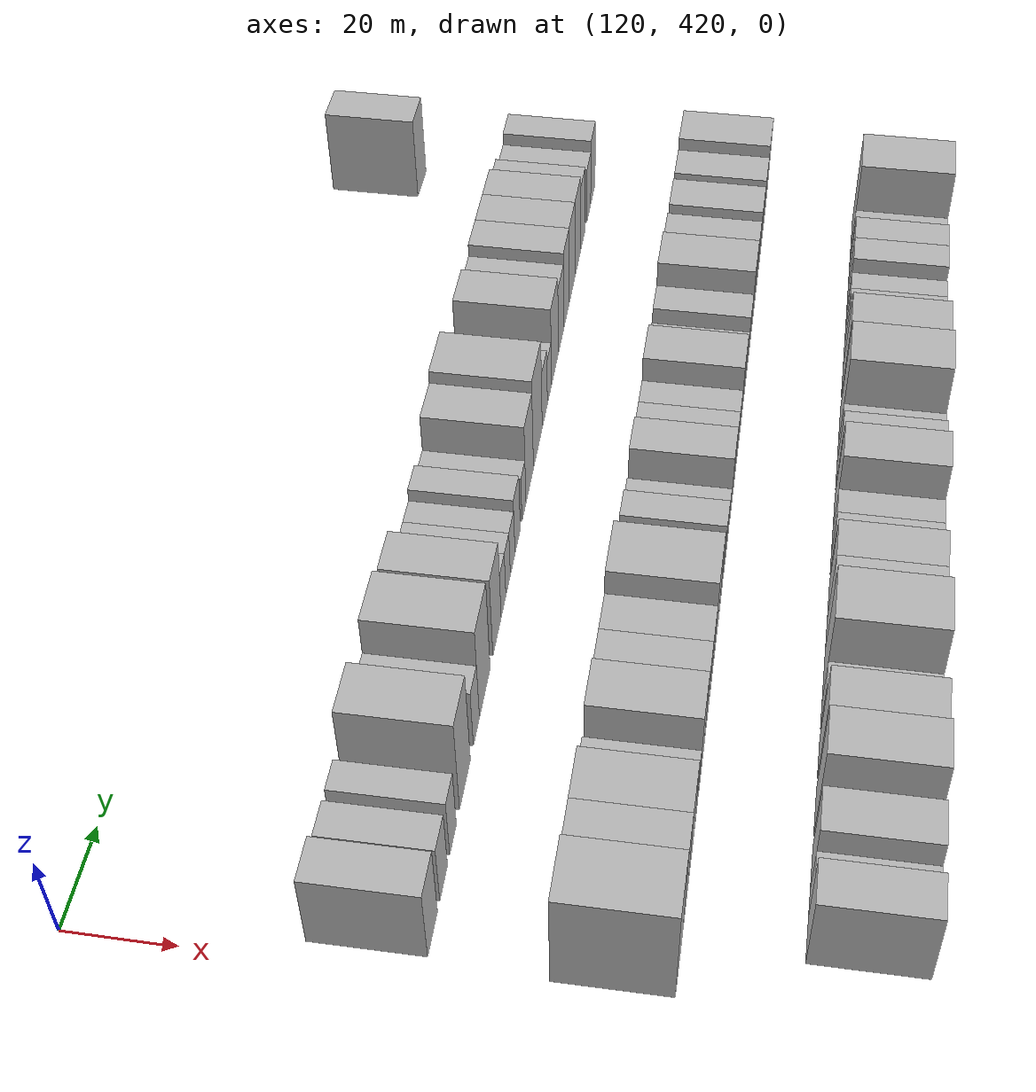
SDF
<sdf version="1.6">
 <world name="default">
  <model name="building_418">
   <static>1</static>
   <pose>130.0000 620.2635 0 0.000000 0.000000 0.000000</pose>
   <link name="link">
    <pose>0 0 10.50 0 0 0</pose>
    <collision name="collision"><geometry><box><size>20.0000 9.5100 21.0000</size></box></geometry></collision>
    <visual name="visual">
     <cast_shadows>0</cast_shadows>
     <geometry><box><size>20.0000 9.5100 21.0000</size></box></geometry>
     <material>
      <script>
       <uri>model://HANNAS_wall/materials/scripts</uri>
       <uri>model://HANNAS_wall/materials/textures</uri>
       <name>vrc/HANNAS_wall</name>
      </script>
     </material>
    </visual>
   </link>
  </model>
  <model name="building_538">
   <static>1</static>
   <pose>170.0000 427.9245 0 0.000000 0.000000 0.000000</pose>
   <link name="link">
    <pose>0 0 9.00 0 0 0</pose>
    <collision name="collision"><geometry><box><size>20.0000 8.2795 18.0000</size></box></geometry></collision>
    <visual name="visual">
     <cast_shadows>0</cast_shadows>
     <geometry><box><size>20.0000 8.2795 18.0000</size></box></geometry>
     <material>
      <script>
       <uri>model://HANNAS_wall/materials/scripts</uri>
       <uri>model://HANNAS_wall/materials/textures</uri>
       <name>vrc/HANNAS_wall</name>
      </script>
     </material>
    </visual>
   </link>
  </model>
  <model name="building_539">
   <static>1</static>
   <pose>170.0000 437.4604 0 0.000000 0.000000 0.000000</pose>
   <link name="link">
    <pose>0 0 7.50 0 0 0</pose>
    <collision name="collision"><geometry><box><size>20.0000 6.7921 15.0000</size></box></geometry></collision>
    <visual name="visual">
     <cast_shadows>0</cast_shadows>
     <geometry><box><size>20.0000 6.7921 15.0000</size></box></geometry>
     <material>
      <script>
       <uri>model://HANNAS_wall/materials/scripts</uri>
       <uri>model://HANNAS_wall/materials/textures</uri>
       <name>vrc/HANNAS_wall</name>
      </script>
     </material>
    </visual>
   </link>
  </model>
  <model name="building_540">
   <static>1</static>
   <pose>170.0000 445.8690 0 0.000000 0.000000 0.000000</pose>
   <link name="link">
    <pose>0 0 7.50 0 0 0</pose>
    <collision name="collision"><geometry><box><size>20.0000 6.0252 15.0000</size></box></geometry></collision>
    <visual name="visual">
     <cast_shadows>0</cast_shadows>
     <geometry><box><size>20.0000 6.0252 15.0000</size></box></geometry>
     <material>
      <script>
       <uri>model://HANNAS_wall/materials/scripts</uri>
       <uri>model://HANNAS_wall/materials/textures</uri>
       <name>vrc/HANNAS_wall</name>
      </script>
     </material>
    </visual>
   </link>
  </model>
  <model name="building_541">
   <static>1</static>
   <pose>170.0000 457.0454 0 0.000000 0.000000 0.000000</pose>
   <link name="link">
    <pose>0 0 12.00 0 0 0</pose>
    <collision name="collision"><geometry><box><size>20.0000 10.3277 24.0000</size></box></geometry></collision>
    <visual name="visual">
     <cast_shadows>0</cast_shadows>
     <geometry><box><size>20.0000 10.3277 24.0000</size></box></geometry>
     <material>
      <script>
       <uri>model://HANNAS_wall/materials/scripts</uri>
       <uri>model://HANNAS_wall/materials/textures</uri>
       <name>vrc/HANNAS_wall</name>
      </script>
     </material>
    </visual>
   </link>
  </model>
  <model name="building_542">
   <static>1</static>
   <pose>170.0000 468.2544 0 0.000000 0.000000 0.000000</pose>
   <link name="link">
    <pose>0 0 7.50 0 0 0</pose>
    <collision name="collision"><geometry><box><size>20.0000 6.0903 15.0000</size></box></geometry></collision>
    <visual name="visual">
     <cast_shadows>0</cast_shadows>
     <geometry><box><size>20.0000 6.0903 15.0000</size></box></geometry>
     <material>
      <script>
       <uri>model://HANNAS_wall/materials/scripts</uri>
       <uri>model://HANNAS_wall/materials/textures</uri>
       <name>vrc/HANNAS_wall</name>
      </script>
     </material>
    </visual>
   </link>
  </model>
  <model name="building_543">
   <static>1</static>
   <pose>170.0000 476.8328 0 0.000000 0.000000 0.000000</pose>
   <link name="link">
    <pose>0 0 12.00 0 0 0</pose>
    <collision name="collision"><geometry><box><size>20.0000 11.0664 24.0000</size></box></geometry></collision>
    <visual name="visual">
     <cast_shadows>0</cast_shadows>
     <geometry><box><size>20.0000 11.0664 24.0000</size></box></geometry>
     <material>
      <script>
       <uri>model://HANNAS_wall/materials/scripts</uri>
       <uri>model://HANNAS_wall/materials/textures</uri>
       <name>vrc/HANNAS_wall</name>
      </script>
     </material>
    </visual>
   </link>
  </model>
  <model name="building_544">
   <static>1</static>
   <pose>170.0000 489.8753 0 0.000000 0.000000 0.000000</pose>
   <link name="link">
    <pose>0 0 10.50 0 0 0</pose>
    <collision name="collision"><geometry><box><size>20.0000 9.0187 21.0000</size></box></geometry></collision>
    <visual name="visual">
     <cast_shadows>0</cast_shadows>
     <geometry><box><size>20.0000 9.0187 21.0000</size></box></geometry>
     <material>
      <script>
       <uri>model://HANNAS_wall/materials/scripts</uri>
       <uri>model://HANNAS_wall/materials/textures</uri>
       <name>vrc/HANNAS_wall</name>
      </script>
     </material>
    </visual>
   </link>
  </model>
  <model name="building_545">
   <static>1</static>
   <pose>170.0000 497.0329 0 0.000000 0.000000 0.000000</pose>
   <link name="link">
    <pose>0 0 6.00 0 0 0</pose>
    <collision name="collision"><geometry><box><size>20.0000 5.2964 12.0000</size></box></geometry></collision>
    <visual name="visual">
     <cast_shadows>0</cast_shadows>
     <geometry><box><size>20.0000 5.2964 12.0000</size></box></geometry>
     <material>
      <script>
       <uri>model://HANNAS_wall/materials/scripts</uri>
       <uri>model://HANNAS_wall/materials/textures</uri>
       <name>vrc/HANNAS_wall</name>
      </script>
     </material>
    </visual>
   </link>
  </model>
  <model name="building_546">
   <static>1</static>
   <pose>170.0000 502.2629 0 0.000000 0.000000 0.000000</pose>
   <link name="link">
    <pose>0 0 6.00 0 0 0</pose>
    <collision name="collision"><geometry><box><size>20.0000 5.1636 12.0000</size></box></geometry></collision>
    <visual name="visual">
     <cast_shadows>0</cast_shadows>
     <geometry><box><size>20.0000 5.1636 12.0000</size></box></geometry>
     <material>
      <script>
       <uri>model://HANNAS_wall/materials/scripts</uri>
       <uri>model://HANNAS_wall/materials/textures</uri>
       <name>vrc/HANNAS_wall</name>
      </script>
     </material>
    </visual>
   </link>
  </model>
  <model name="building_547">
   <static>1</static>
   <pose>170.0000 507.5565 0 0.000000 0.000000 0.000000</pose>
   <link name="link">
    <pose>0 0 6.00 0 0 0</pose>
    <collision name="collision"><geometry><box><size>20.0000 5.4237 12.0000</size></box></geometry></collision>
    <visual name="visual">
     <cast_shadows>0</cast_shadows>
     <geometry><box><size>20.0000 5.4237 12.0000</size></box></geometry>
     <material>
      <script>
       <uri>model://HANNAS_wall/materials/scripts</uri>
       <uri>model://HANNAS_wall/materials/textures</uri>
       <name>vrc/HANNAS_wall</name>
      </script>
     </material>
    </visual>
   </link>
  </model>
  <model name="building_548">
   <static>1</static>
   <pose>170.0000 513.4829 0 0.000000 0.000000 0.000000</pose>
   <link name="link">
    <pose>0 0 7.50 0 0 0</pose>
    <collision name="collision"><geometry><box><size>20.0000 6.4291 15.0000</size></box></geometry></collision>
    <visual name="visual">
     <cast_shadows>0</cast_shadows>
     <geometry><box><size>20.0000 6.4291 15.0000</size></box></geometry>
     <material>
      <script>
       <uri>model://HANNAS_wall/materials/scripts</uri>
       <uri>model://HANNAS_wall/materials/textures</uri>
       <name>vrc/HANNAS_wall</name>
      </script>
     </material>
    </visual>
   </link>
  </model>
  <model name="building_549">
   <static>1</static>
   <pose>170.0000 521.1600 0 0.000000 0.000000 0.000000</pose>
   <link name="link">
    <pose>0 0 6.00 0 0 0</pose>
    <collision name="collision"><geometry><box><size>20.0000 4.9250 12.0000</size></box></geometry></collision>
    <visual name="visual">
     <cast_shadows>0</cast_shadows>
     <geometry><box><size>20.0000 4.9250 12.0000</size></box></geometry>
     <material>
      <script>
       <uri>model://HANNAS_wall/materials/scripts</uri>
       <uri>model://HANNAS_wall/materials/textures</uri>
       <name>vrc/HANNAS_wall</name>
      </script>
     </material>
    </visual>
   </link>
  </model>
  <model name="building_550">
   <static>1</static>
   <pose>170.0000 528.3620 0 0.000000 0.000000 0.000000</pose>
   <link name="link">
    <pose>0 0 10.50 0 0 0</pose>
    <collision name="collision"><geometry><box><size>20.0000 9.4790 21.0000</size></box></geometry></collision>
    <visual name="visual">
     <cast_shadows>0</cast_shadows>
     <geometry><box><size>20.0000 9.4790 21.0000</size></box></geometry>
     <material>
      <script>
       <uri>model://HANNAS_wall/materials/scripts</uri>
       <uri>model://HANNAS_wall/materials/textures</uri>
       <name>vrc/HANNAS_wall</name>
      </script>
     </material>
    </visual>
   </link>
  </model>
  <model name="building_551">
   <static>1</static>
   <pose>170.0000 538.8412 0 0.000000 0.000000 0.000000</pose>
   <link name="link">
    <pose>0 0 12.00 0 0 0</pose>
    <collision name="collision"><geometry><box><size>20.0000 11.4795 24.0000</size></box></geometry></collision>
    <visual name="visual">
     <cast_shadows>0</cast_shadows>
     <geometry><box><size>20.0000 11.4795 24.0000</size></box></geometry>
     <material>
      <script>
       <uri>model://HANNAS_wall/materials/scripts</uri>
       <uri>model://HANNAS_wall/materials/textures</uri>
       <name>vrc/HANNAS_wall</name>
      </script>
     </material>
    </visual>
   </link>
  </model>
  <model name="building_552">
   <static>1</static>
   <pose>170.0000 548.1274 0 0.000000 0.000000 0.000000</pose>
   <link name="link">
    <pose>0 0 7.50 0 0 0</pose>
    <collision name="collision"><geometry><box><size>20.0000 7.0927 15.0000</size></box></geometry></collision>
    <visual name="visual">
     <cast_shadows>0</cast_shadows>
     <geometry><box><size>20.0000 7.0927 15.0000</size></box></geometry>
     <material>
      <script>
       <uri>model://HANNAS_wall/materials/scripts</uri>
       <uri>model://HANNAS_wall/materials/textures</uri>
       <name>vrc/HANNAS_wall</name>
      </script>
     </material>
    </visual>
   </link>
  </model>
  <model name="building_553">
   <static>1</static>
   <pose>170.0000 554.5163 0 0.000000 0.000000 0.000000</pose>
   <link name="link">
    <pose>0 0 6.00 0 0 0</pose>
    <collision name="collision"><geometry><box><size>20.0000 5.6851 12.0000</size></box></geometry></collision>
    <visual name="visual">
     <cast_shadows>0</cast_shadows>
     <geometry><box><size>20.0000 5.6851 12.0000</size></box></geometry>
     <material>
      <script>
       <uri>model://HANNAS_wall/materials/scripts</uri>
       <uri>model://HANNAS_wall/materials/textures</uri>
       <name>vrc/HANNAS_wall</name>
      </script>
     </material>
    </visual>
   </link>
  </model>
  <model name="building_554">
   <static>1</static>
   <pose>170.0000 562.2601 0 0.000000 0.000000 0.000000</pose>
   <link name="link">
    <pose>0 0 10.50 0 0 0</pose>
    <collision name="collision"><geometry><box><size>20.0000 9.8026 21.0000</size></box></geometry></collision>
    <visual name="visual">
     <cast_shadows>0</cast_shadows>
     <geometry><box><size>20.0000 9.8026 21.0000</size></box></geometry>
     <material>
      <script>
       <uri>model://HANNAS_wall/materials/scripts</uri>
       <uri>model://HANNAS_wall/materials/textures</uri>
       <name>vrc/HANNAS_wall</name>
      </script>
     </material>
    </visual>
   </link>
  </model>
  <model name="building_555">
   <static>1</static>
   <pose>170.0000 571.1021 0 0.000000 0.000000 0.000000</pose>
   <link name="link">
    <pose>0 0 9.00 0 0 0</pose>
    <collision name="collision"><geometry><box><size>20.0000 7.8814 18.0000</size></box></geometry></collision>
    <visual name="visual">
     <cast_shadows>0</cast_shadows>
     <geometry><box><size>20.0000 7.8814 18.0000</size></box></geometry>
     <material>
      <script>
       <uri>model://HANNAS_wall/materials/scripts</uri>
       <uri>model://HANNAS_wall/materials/textures</uri>
       <name>vrc/HANNAS_wall</name>
      </script>
     </material>
    </visual>
   </link>
  </model>
  <model name="building_556">
   <static>1</static>
   <pose>170.0000 579.2495 0 0.000000 0.000000 0.000000</pose>
   <link name="link">
    <pose>0 0 10.50 0 0 0</pose>
    <collision name="collision"><geometry><box><size>20.0000 8.4134 21.0000</size></box></geometry></collision>
    <visual name="visual">
     <cast_shadows>0</cast_shadows>
     <geometry><box><size>20.0000 8.4134 21.0000</size></box></geometry>
     <material>
      <script>
       <uri>model://HANNAS_wall/materials/scripts</uri>
       <uri>model://HANNAS_wall/materials/textures</uri>
       <name>vrc/HANNAS_wall</name>
      </script>
     </material>
    </visual>
   </link>
  </model>
  <model name="building_557">
   <static>1</static>
   <pose>170.0000 587.8380 0 0.000000 0.000000 0.000000</pose>
   <link name="link">
    <pose>0 0 10.50 0 0 0</pose>
    <collision name="collision"><geometry><box><size>20.0000 8.7636 21.0000</size></box></geometry></collision>
    <visual name="visual">
     <cast_shadows>0</cast_shadows>
     <geometry><box><size>20.0000 8.7636 21.0000</size></box></geometry>
     <material>
      <script>
       <uri>model://HANNAS_wall/materials/scripts</uri>
       <uri>model://HANNAS_wall/materials/textures</uri>
       <name>vrc/HANNAS_wall</name>
      </script>
     </material>
    </visual>
   </link>
  </model>
  <model name="building_558">
   <static>1</static>
   <pose>170.0000 596.6215 0 0.000000 0.000000 0.000000</pose>
   <link name="link">
    <pose>0 0 10.50 0 0 0</pose>
    <collision name="collision"><geometry><box><size>20.0000 8.8033 21.0000</size></box></geometry></collision>
    <visual name="visual">
     <cast_shadows>0</cast_shadows>
     <geometry><box><size>20.0000 8.8033 21.0000</size></box></geometry>
     <material>
      <script>
       <uri>model://HANNAS_wall/materials/scripts</uri>
       <uri>model://HANNAS_wall/materials/textures</uri>
       <name>vrc/HANNAS_wall</name>
      </script>
     </material>
    </visual>
   </link>
  </model>
  <model name="building_559">
   <static>1</static>
   <pose>170.0000 604.8099 0 0.000000 0.000000 0.000000</pose>
   <link name="link">
    <pose>0 0 9.00 0 0 0</pose>
    <collision name="collision"><geometry><box><size>20.0000 7.5735 18.0000</size></box></geometry></collision>
    <visual name="visual">
     <cast_shadows>0</cast_shadows>
     <geometry><box><size>20.0000 7.5735 18.0000</size></box></geometry>
     <material>
      <script>
       <uri>model://HANNAS_wall/materials/scripts</uri>
       <uri>model://HANNAS_wall/materials/textures</uri>
       <name>vrc/HANNAS_wall</name>
      </script>
     </material>
    </visual>
   </link>
  </model>
  <model name="building_560">
   <static>1</static>
   <pose>170.0000 614.8557 0 0.000000 0.000000 0.000000</pose>
   <link name="link">
    <pose>0 0 7.50 0 0 0</pose>
    <collision name="collision"><geometry><box><size>20.0000 6.5181 15.0000</size></box></geometry></collision>
    <visual name="visual">
     <cast_shadows>0</cast_shadows>
     <geometry><box><size>20.0000 6.5181 15.0000</size></box></geometry>
     <material>
      <script>
       <uri>model://HANNAS_wall/materials/scripts</uri>
       <uri>model://HANNAS_wall/materials/textures</uri>
       <name>vrc/HANNAS_wall</name>
      </script>
     </material>
    </visual>
   </link>
  </model>
  <model name="building_561">
   <static>1</static>
   <pose>170.0000 621.8869 0 0.000000 0.000000 0.000000</pose>
   <link name="link">
    <pose>0 0 9.00 0 0 0</pose>
    <collision name="collision"><geometry><box><size>20.0000 7.5445 18.0000</size></box></geometry></collision>
    <visual name="visual">
     <cast_shadows>0</cast_shadows>
     <geometry><box><size>20.0000 7.5445 18.0000</size></box></geometry>
     <material>
      <script>
       <uri>model://HANNAS_wall/materials/scripts</uri>
       <uri>model://HANNAS_wall/materials/textures</uri>
       <name>vrc/HANNAS_wall</name>
      </script>
     </material>
    </visual>
   </link>
  </model>
  <model name="building_681">
   <static>1</static>
   <pose>210.0000 428.2465 0 0.000000 0.000000 0.000000</pose>
   <link name="link">
    <pose>0 0 12.00 0 0 0</pose>
    <collision name="collision"><geometry><box><size>20.0000 11.9575 24.0000</size></box></geometry></collision>
    <visual name="visual">
     <cast_shadows>0</cast_shadows>
     <geometry><box><size>20.0000 11.9575 24.0000</size></box></geometry>
     <material>
      <script>
       <uri>model://HANNAS_wall/materials/scripts</uri>
       <uri>model://HANNAS_wall/materials/textures</uri>
       <name>vrc/HANNAS_wall</name>
      </script>
     </material>
    </visual>
   </link>
  </model>
  <model name="building_682">
   <static>1</static>
   <pose>210.0000 438.6033 0 0.000000 0.000000 0.000000</pose>
   <link name="link">
    <pose>0 0 10.50 0 0 0</pose>
    <collision name="collision"><geometry><box><size>20.0000 8.7561 21.0000</size></box></geometry></collision>
    <visual name="visual">
     <cast_shadows>0</cast_shadows>
     <geometry><box><size>20.0000 8.7561 21.0000</size></box></geometry>
     <material>
      <script>
       <uri>model://HANNAS_wall/materials/scripts</uri>
       <uri>model://HANNAS_wall/materials/textures</uri>
       <name>vrc/HANNAS_wall</name>
      </script>
     </material>
    </visual>
   </link>
  </model>
  <model name="building_683">
   <static>1</static>
   <pose>210.0000 447.9846 0 0.000000 0.000000 0.000000</pose>
   <link name="link">
    <pose>0 0 10.50 0 0 0</pose>
    <collision name="collision"><geometry><box><size>20.0000 10.0066 21.0000</size></box></geometry></collision>
    <visual name="visual">
     <cast_shadows>0</cast_shadows>
     <geometry><box><size>20.0000 10.0066 21.0000</size></box></geometry>
     <material>
      <script>
       <uri>model://HANNAS_wall/materials/scripts</uri>
       <uri>model://HANNAS_wall/materials/textures</uri>
       <name>vrc/HANNAS_wall</name>
      </script>
     </material>
    </visual>
   </link>
  </model>
  <model name="building_684">
   <static>1</static>
   <pose>210.0000 456.0999 0 0.000000 0.000000 0.000000</pose>
   <link name="link">
    <pose>0 0 7.50 0 0 0</pose>
    <collision name="collision"><geometry><box><size>20.0000 6.2239 15.0000</size></box></geometry></collision>
    <visual name="visual">
     <cast_shadows>0</cast_shadows>
     <geometry><box><size>20.0000 6.2239 15.0000</size></box></geometry>
     <material>
      <script>
       <uri>model://HANNAS_wall/materials/scripts</uri>
       <uri>model://HANNAS_wall/materials/textures</uri>
       <name>vrc/HANNAS_wall</name>
      </script>
     </material>
    </visual>
   </link>
  </model>
  <model name="building_685">
   <static>1</static>
   <pose>210.0000 466.1603 0 0.000000 0.000000 0.000000</pose>
   <link name="link">
    <pose>0 0 10.50 0 0 0</pose>
    <collision name="collision"><geometry><box><size>20.0000 9.8971 21.0000</size></box></geometry></collision>
    <visual name="visual">
     <cast_shadows>0</cast_shadows>
     <geometry><box><size>20.0000 9.8971 21.0000</size></box></geometry>
     <material>
      <script>
       <uri>model://HANNAS_wall/materials/scripts</uri>
       <uri>model://HANNAS_wall/materials/textures</uri>
       <name>vrc/HANNAS_wall</name>
      </script>
     </material>
    </visual>
   </link>
  </model>
  <model name="building_686">
   <static>1</static>
   <pose>210.0000 475.5412 0 0.000000 0.000000 0.000000</pose>
   <link name="link">
    <pose>0 0 9.00 0 0 0</pose>
    <collision name="collision"><geometry><box><size>20.0000 8.8646 18.0000</size></box></geometry></collision>
    <visual name="visual">
     <cast_shadows>0</cast_shadows>
     <geometry><box><size>20.0000 8.8646 18.0000</size></box></geometry>
     <material>
      <script>
       <uri>model://HANNAS_wall/materials/scripts</uri>
       <uri>model://HANNAS_wall/materials/textures</uri>
       <name>vrc/HANNAS_wall</name>
      </script>
     </material>
    </visual>
   </link>
  </model>
  <model name="building_687">
   <static>1</static>
   <pose>210.0000 483.9581 0 0.000000 0.000000 0.000000</pose>
   <link name="link">
    <pose>0 0 9.00 0 0 0</pose>
    <collision name="collision"><geometry><box><size>20.0000 7.9691 18.0000</size></box></geometry></collision>
    <visual name="visual">
     <cast_shadows>0</cast_shadows>
     <geometry><box><size>20.0000 7.9691 18.0000</size></box></geometry>
     <material>
      <script>
       <uri>model://HANNAS_wall/materials/scripts</uri>
       <uri>model://HANNAS_wall/materials/textures</uri>
       <name>vrc/HANNAS_wall</name>
      </script>
     </material>
    </visual>
   </link>
  </model>
  <model name="building_688">
   <static>1</static>
   <pose>210.0000 493.9100 0 0.000000 0.000000 0.000000</pose>
   <link name="link">
    <pose>0 0 12.00 0 0 0</pose>
    <collision name="collision"><geometry><box><size>20.0000 11.9346 24.0000</size></box></geometry></collision>
    <visual name="visual">
     <cast_shadows>0</cast_shadows>
     <geometry><box><size>20.0000 11.9346 24.0000</size></box></geometry>
     <material>
      <script>
       <uri>model://HANNAS_wall/materials/scripts</uri>
       <uri>model://HANNAS_wall/materials/textures</uri>
       <name>vrc/HANNAS_wall</name>
      </script>
     </material>
    </visual>
   </link>
  </model>
  <model name="building_689">
   <static>1</static>
   <pose>210.0000 503.1693 0 0.000000 0.000000 0.000000</pose>
   <link name="link">
    <pose>0 0 7.50 0 0 0</pose>
    <collision name="collision"><geometry><box><size>20.0000 6.5841 15.0000</size></box></geometry></collision>
    <visual name="visual">
     <cast_shadows>0</cast_shadows>
     <geometry><box><size>20.0000 6.5841 15.0000</size></box></geometry>
     <material>
      <script>
       <uri>model://HANNAS_wall/materials/scripts</uri>
       <uri>model://HANNAS_wall/materials/textures</uri>
       <name>vrc/HANNAS_wall</name>
      </script>
     </material>
    </visual>
   </link>
  </model>
  <model name="building_690">
   <static>1</static>
   <pose>210.0000 512.7171 0 0.000000 0.000000 0.000000</pose>
   <link name="link">
    <pose>0 0 7.50 0 0 0</pose>
    <collision name="collision"><geometry><box><size>20.0000 6.5115 15.0000</size></box></geometry></collision>
    <visual name="visual">
     <cast_shadows>0</cast_shadows>
     <geometry><box><size>20.0000 6.5115 15.0000</size></box></geometry>
     <material>
      <script>
       <uri>model://HANNAS_wall/materials/scripts</uri>
       <uri>model://HANNAS_wall/materials/textures</uri>
       <name>vrc/HANNAS_wall</name>
      </script>
     </material>
    </visual>
   </link>
  </model>
  <model name="building_691">
   <static>1</static>
   <pose>210.0000 518.9278 0 0.000000 0.000000 0.000000</pose>
   <link name="link">
    <pose>0 0 6.00 0 0 0</pose>
    <collision name="collision"><geometry><box><size>20.0000 5.9099 12.0000</size></box></geometry></collision>
    <visual name="visual">
     <cast_shadows>0</cast_shadows>
     <geometry><box><size>20.0000 5.9099 12.0000</size></box></geometry>
     <material>
      <script>
       <uri>model://HANNAS_wall/materials/scripts</uri>
       <uri>model://HANNAS_wall/materials/textures</uri>
       <name>vrc/HANNAS_wall</name>
      </script>
     </material>
    </visual>
   </link>
  </model>
  <model name="building_692">
   <static>1</static>
   <pose>210.0000 528.1828 0 0.000000 0.000000 0.000000</pose>
   <link name="link">
    <pose>0 0 9.00 0 0 0</pose>
    <collision name="collision"><geometry><box><size>20.0000 8.5999 18.0000</size></box></geometry></collision>
    <visual name="visual">
     <cast_shadows>0</cast_shadows>
     <geometry><box><size>20.0000 8.5999 18.0000</size></box></geometry>
     <material>
      <script>
       <uri>model://HANNAS_wall/materials/scripts</uri>
       <uri>model://HANNAS_wall/materials/textures</uri>
       <name>vrc/HANNAS_wall</name>
      </script>
     </material>
    </visual>
   </link>
  </model>
  <model name="building_693">
   <static>1</static>
   <pose>210.0000 536.1152 0 0.000000 0.000000 0.000000</pose>
   <link name="link">
    <pose>0 0 7.50 0 0 0</pose>
    <collision name="collision"><geometry><box><size>20.0000 7.2649 15.0000</size></box></geometry></collision>
    <visual name="visual">
     <cast_shadows>0</cast_shadows>
     <geometry><box><size>20.0000 7.2649 15.0000</size></box></geometry>
     <material>
      <script>
       <uri>model://HANNAS_wall/materials/scripts</uri>
       <uri>model://HANNAS_wall/materials/textures</uri>
       <name>vrc/HANNAS_wall</name>
      </script>
     </material>
    </visual>
   </link>
  </model>
  <model name="building_694">
   <static>1</static>
   <pose>210.0000 542.7847 0 0.000000 0.000000 0.000000</pose>
   <link name="link">
    <pose>0 0 7.50 0 0 0</pose>
    <collision name="collision"><geometry><box><size>20.0000 6.0742 15.0000</size></box></geometry></collision>
    <visual name="visual">
     <cast_shadows>0</cast_shadows>
     <geometry><box><size>20.0000 6.0742 15.0000</size></box></geometry>
     <material>
      <script>
       <uri>model://HANNAS_wall/materials/scripts</uri>
       <uri>model://HANNAS_wall/materials/textures</uri>
       <name>vrc/HANNAS_wall</name>
      </script>
     </material>
    </visual>
   </link>
  </model>
  <model name="building_695">
   <static>1</static>
   <pose>210.0000 550.7575 0 0.000000 0.000000 0.000000</pose>
   <link name="link">
    <pose>0 0 10.50 0 0 0</pose>
    <collision name="collision"><geometry><box><size>20.0000 9.8713 21.0000</size></box></geometry></collision>
    <visual name="visual">
     <cast_shadows>0</cast_shadows>
     <geometry><box><size>20.0000 9.8713 21.0000</size></box></geometry>
     <material>
      <script>
       <uri>model://HANNAS_wall/materials/scripts</uri>
       <uri>model://HANNAS_wall/materials/textures</uri>
       <name>vrc/HANNAS_wall</name>
      </script>
     </material>
    </visual>
   </link>
  </model>
  <model name="building_696">
   <static>1</static>
   <pose>210.0000 559.3539 0 0.000000 0.000000 0.000000</pose>
   <link name="link">
    <pose>0 0 7.50 0 0 0</pose>
    <collision name="collision"><geometry><box><size>20.0000 7.3215 15.0000</size></box></geometry></collision>
    <visual name="visual">
     <cast_shadows>0</cast_shadows>
     <geometry><box><size>20.0000 7.3215 15.0000</size></box></geometry>
     <material>
      <script>
       <uri>model://HANNAS_wall/materials/scripts</uri>
       <uri>model://HANNAS_wall/materials/textures</uri>
       <name>vrc/HANNAS_wall</name>
      </script>
     </material>
    </visual>
   </link>
  </model>
  <model name="building_697">
   <static>1</static>
   <pose>210.0000 567.6447 0 0.000000 0.000000 0.000000</pose>
   <link name="link">
    <pose>0 0 9.00 0 0 0</pose>
    <collision name="collision"><geometry><box><size>20.0000 7.2601 18.0000</size></box></geometry></collision>
    <visual name="visual">
     <cast_shadows>0</cast_shadows>
     <geometry><box><size>20.0000 7.2601 18.0000</size></box></geometry>
     <material>
      <script>
       <uri>model://HANNAS_wall/materials/scripts</uri>
       <uri>model://HANNAS_wall/materials/textures</uri>
       <name>vrc/HANNAS_wall</name>
      </script>
     </material>
    </visual>
   </link>
  </model>
  <model name="building_698">
   <static>1</static>
   <pose>210.0000 576.3079 0 0.000000 0.000000 0.000000</pose>
   <link name="link">
    <pose>0 0 12.00 0 0 0</pose>
    <collision name="collision"><geometry><box><size>20.0000 10.0664 24.0000</size></box></geometry></collision>
    <visual name="visual">
     <cast_shadows>0</cast_shadows>
     <geometry><box><size>20.0000 10.0664 24.0000</size></box></geometry>
     <material>
      <script>
       <uri>model://HANNAS_wall/materials/scripts</uri>
       <uri>model://HANNAS_wall/materials/textures</uri>
       <name>vrc/HANNAS_wall</name>
      </script>
     </material>
    </visual>
   </link>
  </model>
  <model name="building_699">
   <static>1</static>
   <pose>210.0000 586.3465 0 0.000000 0.000000 0.000000</pose>
   <link name="link">
    <pose>0 0 10.50 0 0 0</pose>
    <collision name="collision"><geometry><box><size>20.0000 10.0107 21.0000</size></box></geometry></collision>
    <visual name="visual">
     <cast_shadows>0</cast_shadows>
     <geometry><box><size>20.0000 10.0107 21.0000</size></box></geometry>
     <material>
      <script>
       <uri>model://HANNAS_wall/materials/scripts</uri>
       <uri>model://HANNAS_wall/materials/textures</uri>
       <name>vrc/HANNAS_wall</name>
      </script>
     </material>
    </visual>
   </link>
  </model>
  <model name="building_700">
   <static>1</static>
   <pose>210.0000 598.8268 0 0.000000 0.000000 0.000000</pose>
   <link name="link">
    <pose>0 0 10.50 0 0 0</pose>
    <collision name="collision"><geometry><box><size>20.0000 8.9499 21.0000</size></box></geometry></collision>
    <visual name="visual">
     <cast_shadows>0</cast_shadows>
     <geometry><box><size>20.0000 8.9499 21.0000</size></box></geometry>
     <material>
      <script>
       <uri>model://HANNAS_wall/materials/scripts</uri>
       <uri>model://HANNAS_wall/materials/textures</uri>
       <name>vrc/HANNAS_wall</name>
      </script>
     </material>
    </visual>
   </link>
  </model>
  <model name="building_701">
   <static>1</static>
   <pose>210.0000 609.5153 0 0.000000 0.000000 0.000000</pose>
   <link name="link">
    <pose>0 0 10.50 0 0 0</pose>
    <collision name="collision"><geometry><box><size>20.0000 8.4271 21.0000</size></box></geometry></collision>
    <visual name="visual">
     <cast_shadows>0</cast_shadows>
     <geometry><box><size>20.0000 8.4271 21.0000</size></box></geometry>
     <material>
      <script>
       <uri>model://HANNAS_wall/materials/scripts</uri>
       <uri>model://HANNAS_wall/materials/textures</uri>
       <name>vrc/HANNAS_wall</name>
      </script>
     </material>
    </visual>
   </link>
  </model>
  <model name="building_702">
   <static>1</static>
   <pose>210.0000 618.9880 0 0.000000 0.000000 0.000000</pose>
   <link name="link">
    <pose>0 0 12.00 0 0 0</pose>
    <collision name="collision"><geometry><box><size>20.0000 10.5184 24.0000</size></box></geometry></collision>
    <visual name="visual">
     <cast_shadows>0</cast_shadows>
     <geometry><box><size>20.0000 10.5184 24.0000</size></box></geometry>
     <material>
      <script>
       <uri>model://HANNAS_wall/materials/scripts</uri>
       <uri>model://HANNAS_wall/materials/textures</uri>
       <name>vrc/HANNAS_wall</name>
      </script>
     </material>
    </visual>
   </link>
  </model>
  <model name="building_820">
   <static>1</static>
   <pose>250.0000 435.2912 0 0.000000 0.000000 0.000000</pose>
   <link name="link">
    <pose>0 0 9.00 0 0 0</pose>
    <collision name="collision"><geometry><box><size>20.0000 8.4350 18.0000</size></box></geometry></collision>
    <visual name="visual">
     <cast_shadows>0</cast_shadows>
     <geometry><box><size>20.0000 8.4350 18.0000</size></box></geometry>
     <material>
      <script>
       <uri>model://HANNAS_wall/materials/scripts</uri>
       <uri>model://HANNAS_wall/materials/textures</uri>
       <name>vrc/HANNAS_wall</name>
      </script>
     </material>
    </visual>
   </link>
  </model>
  <model name="building_821">
   <static>1</static>
   <pose>250.0000 442.0064 0 0.000000 0.000000 0.000000</pose>
   <link name="link">
    <pose>0 0 6.00 0 0 0</pose>
    <collision name="collision"><geometry><box><size>20.0000 4.9954 12.0000</size></box></geometry></collision>
    <visual name="visual">
     <cast_shadows>0</cast_shadows>
     <geometry><box><size>20.0000 4.9954 12.0000</size></box></geometry>
     <material>
      <script>
       <uri>model://HANNAS_wall/materials/scripts</uri>
       <uri>model://HANNAS_wall/materials/textures</uri>
       <name>vrc/HANNAS_wall</name>
      </script>
     </material>
    </visual>
   </link>
  </model>
  <model name="building_822">
   <static>1</static>
   <pose>250.0000 448.7737 0 0.000000 0.000000 0.000000</pose>
   <link name="link">
    <pose>0 0 9.00 0 0 0</pose>
    <collision name="collision"><geometry><box><size>20.0000 8.5392 18.0000</size></box></geometry></collision>
    <visual name="visual">
     <cast_shadows>0</cast_shadows>
     <geometry><box><size>20.0000 8.5392 18.0000</size></box></geometry>
     <material>
      <script>
       <uri>model://HANNAS_wall/materials/scripts</uri>
       <uri>model://HANNAS_wall/materials/textures</uri>
       <name>vrc/HANNAS_wall</name>
      </script>
     </material>
    </visual>
   </link>
  </model>
  <model name="building_823">
   <static>1</static>
   <pose>250.0000 459.8852 0 0.000000 0.000000 0.000000</pose>
   <link name="link">
    <pose>0 0 12.00 0 0 0</pose>
    <collision name="collision"><geometry><box><size>20.0000 9.6838 24.0000</size></box></geometry></collision>
    <visual name="visual">
     <cast_shadows>0</cast_shadows>
     <geometry><box><size>20.0000 9.6838 24.0000</size></box></geometry>
     <material>
      <script>
       <uri>model://HANNAS_wall/materials/scripts</uri>
       <uri>model://HANNAS_wall/materials/textures</uri>
       <name>vrc/HANNAS_wall</name>
      </script>
     </material>
    </visual>
   </link>
  </model>
  <model name="building_824">
   <static>1</static>
   <pose>250.0000 471.0313 0 0.000000 0.000000 0.000000</pose>
   <link name="link">
    <pose>0 0 10.50 0 0 0</pose>
    <collision name="collision"><geometry><box><size>20.0000 8.6083 21.0000</size></box></geometry></collision>
    <visual name="visual">
     <cast_shadows>0</cast_shadows>
     <geometry><box><size>20.0000 8.6083 21.0000</size></box></geometry>
     <material>
      <script>
       <uri>model://HANNAS_wall/materials/scripts</uri>
       <uri>model://HANNAS_wall/materials/textures</uri>
       <name>vrc/HANNAS_wall</name>
      </script>
     </material>
    </visual>
   </link>
  </model>
  <model name="building_825">
   <static>1</static>
   <pose>250.0000 480.2450 0 0.000000 0.000000 0.000000</pose>
   <link name="link">
    <pose>0 0 6.00 0 0 0</pose>
    <collision name="collision"><geometry><box><size>20.0000 5.8192 12.0000</size></box></geometry></collision>
    <visual name="visual">
     <cast_shadows>0</cast_shadows>
     <geometry><box><size>20.0000 5.8192 12.0000</size></box></geometry>
     <material>
      <script>
       <uri>model://HANNAS_wall/materials/scripts</uri>
       <uri>model://HANNAS_wall/materials/textures</uri>
       <name>vrc/HANNAS_wall</name>
      </script>
     </material>
    </visual>
   </link>
  </model>
  <model name="building_826">
   <static>1</static>
   <pose>250.0000 489.1077 0 0.000000 0.000000 0.000000</pose>
   <link name="link">
    <pose>0 0 12.00 0 0 0</pose>
    <collision name="collision"><geometry><box><size>20.0000 11.9062 24.0000</size></box></geometry></collision>
    <visual name="visual">
     <cast_shadows>0</cast_shadows>
     <geometry><box><size>20.0000 11.9062 24.0000</size></box></geometry>
     <material>
      <script>
       <uri>model://HANNAS_wall/materials/scripts</uri>
       <uri>model://HANNAS_wall/materials/textures</uri>
       <name>vrc/HANNAS_wall</name>
      </script>
     </material>
    </visual>
   </link>
  </model>
  <model name="building_827">
   <static>1</static>
   <pose>250.0000 498.8853 0 0.000000 0.000000 0.000000</pose>
   <link name="link">
    <pose>0 0 9.00 0 0 0</pose>
    <collision name="collision"><geometry><box><size>20.0000 7.6490 18.0000</size></box></geometry></collision>
    <visual name="visual">
     <cast_shadows>0</cast_shadows>
     <geometry><box><size>20.0000 7.6490 18.0000</size></box></geometry>
     <material>
      <script>
       <uri>model://HANNAS_wall/materials/scripts</uri>
       <uri>model://HANNAS_wall/materials/textures</uri>
       <name>vrc/HANNAS_wall</name>
      </script>
     </material>
    </visual>
   </link>
  </model>
  <model name="building_828">
   <static>1</static>
   <pose>250.0000 507.0931 0 0.000000 0.000000 0.000000</pose>
   <link name="link">
    <pose>0 0 9.00 0 0 0</pose>
    <collision name="collision"><geometry><box><size>20.0000 8.7667 18.0000</size></box></geometry></collision>
    <visual name="visual">
     <cast_shadows>0</cast_shadows>
     <geometry><box><size>20.0000 8.7667 18.0000</size></box></geometry>
     <material>
      <script>
       <uri>model://HANNAS_wall/materials/scripts</uri>
       <uri>model://HANNAS_wall/materials/textures</uri>
       <name>vrc/HANNAS_wall</name>
      </script>
     </material>
    </visual>
   </link>
  </model>
  <model name="building_829">
   <static>1</static>
   <pose>250.0000 516.1083 0 0.000000 0.000000 0.000000</pose>
   <link name="link">
    <pose>0 0 6.00 0 0 0</pose>
    <collision name="collision"><geometry><box><size>20.0000 5.2639 12.0000</size></box></geometry></collision>
    <visual name="visual">
     <cast_shadows>0</cast_shadows>
     <geometry><box><size>20.0000 5.2639 12.0000</size></box></geometry>
     <material>
      <script>
       <uri>model://HANNAS_wall/materials/scripts</uri>
       <uri>model://HANNAS_wall/materials/textures</uri>
       <name>vrc/HANNAS_wall</name>
      </script>
     </material>
    </visual>
   </link>
  </model>
  <model name="building_830">
   <static>1</static>
   <pose>250.0000 521.7061 0 0.000000 0.000000 0.000000</pose>
   <link name="link">
    <pose>0 0 6.00 0 0 0</pose>
    <collision name="collision"><geometry><box><size>20.0000 5.9316 12.0000</size></box></geometry></collision>
    <visual name="visual">
     <cast_shadows>0</cast_shadows>
     <geometry><box><size>20.0000 5.9316 12.0000</size></box></geometry>
     <material>
      <script>
       <uri>model://HANNAS_wall/materials/scripts</uri>
       <uri>model://HANNAS_wall/materials/textures</uri>
       <name>vrc/HANNAS_wall</name>
      </script>
     </material>
    </visual>
   </link>
  </model>
  <model name="building_831">
   <static>1</static>
   <pose>250.0000 529.2972 0 0.000000 0.000000 0.000000</pose>
   <link name="link">
    <pose>0 0 10.50 0 0 0</pose>
    <collision name="collision"><geometry><box><size>20.0000 9.2508 21.0000</size></box></geometry></collision>
    <visual name="visual">
     <cast_shadows>0</cast_shadows>
     <geometry><box><size>20.0000 9.2508 21.0000</size></box></geometry>
     <material>
      <script>
       <uri>model://HANNAS_wall/materials/scripts</uri>
       <uri>model://HANNAS_wall/materials/textures</uri>
       <name>vrc/HANNAS_wall</name>
      </script>
     </material>
    </visual>
   </link>
  </model>
  <model name="building_832">
   <static>1</static>
   <pose>250.0000 539.4231 0 0.000000 0.000000 0.000000</pose>
   <link name="link">
    <pose>0 0 7.50 0 0 0</pose>
    <collision name="collision"><geometry><box><size>20.0000 7.0010 15.0000</size></box></geometry></collision>
    <visual name="visual">
     <cast_shadows>0</cast_shadows>
     <geometry><box><size>20.0000 7.0010 15.0000</size></box></geometry>
     <material>
      <script>
       <uri>model://HANNAS_wall/materials/scripts</uri>
       <uri>model://HANNAS_wall/materials/textures</uri>
       <name>vrc/HANNAS_wall</name>
      </script>
     </material>
    </visual>
   </link>
  </model>
  <model name="building_833">
   <static>1</static>
   <pose>250.0000 545.4503 0 0.000000 0.000000 0.000000</pose>
   <link name="link">
    <pose>0 0 6.00 0 0 0</pose>
    <collision name="collision"><geometry><box><size>20.0000 5.0532 12.0000</size></box></geometry></collision>
    <visual name="visual">
     <cast_shadows>0</cast_shadows>
     <geometry><box><size>20.0000 5.0532 12.0000</size></box></geometry>
     <material>
      <script>
       <uri>model://HANNAS_wall/materials/scripts</uri>
       <uri>model://HANNAS_wall/materials/textures</uri>
       <name>vrc/HANNAS_wall</name>
      </script>
     </material>
    </visual>
   </link>
  </model>
  <model name="building_834">
   <static>1</static>
   <pose>250.0000 553.5915 0 0.000000 0.000000 0.000000</pose>
   <link name="link">
    <pose>0 0 12.00 0 0 0</pose>
    <collision name="collision"><geometry><box><size>20.0000 11.2292 24.0000</size></box></geometry></collision>
    <visual name="visual">
     <cast_shadows>0</cast_shadows>
     <geometry><box><size>20.0000 11.2292 24.0000</size></box></geometry>
     <material>
      <script>
       <uri>model://HANNAS_wall/materials/scripts</uri>
       <uri>model://HANNAS_wall/materials/textures</uri>
       <name>vrc/HANNAS_wall</name>
      </script>
     </material>
    </visual>
   </link>
  </model>
  <model name="building_835">
   <static>1</static>
   <pose>250.0000 566.7593 0 0.000000 0.000000 0.000000</pose>
   <link name="link">
    <pose>0 0 10.50 0 0 0</pose>
    <collision name="collision"><geometry><box><size>20.0000 9.1065 21.0000</size></box></geometry></collision>
    <visual name="visual">
     <cast_shadows>0</cast_shadows>
     <geometry><box><size>20.0000 9.1065 21.0000</size></box></geometry>
     <material>
      <script>
       <uri>model://HANNAS_wall/materials/scripts</uri>
       <uri>model://HANNAS_wall/materials/textures</uri>
       <name>vrc/HANNAS_wall</name>
      </script>
     </material>
    </visual>
   </link>
  </model>
  <model name="building_836">
   <static>1</static>
   <pose>250.0000 574.4940 0 0.000000 0.000000 0.000000</pose>
   <link name="link">
    <pose>0 0 7.50 0 0 0</pose>
    <collision name="collision"><geometry><box><size>20.0000 6.3628 15.0000</size></box></geometry></collision>
    <visual name="visual">
     <cast_shadows>0</cast_shadows>
     <geometry><box><size>20.0000 6.3628 15.0000</size></box></geometry>
     <material>
      <script>
       <uri>model://HANNAS_wall/materials/scripts</uri>
       <uri>model://HANNAS_wall/materials/textures</uri>
       <name>vrc/HANNAS_wall</name>
      </script>
     </material>
    </visual>
   </link>
  </model>
  <model name="building_837">
   <static>1</static>
   <pose>250.0000 580.3901 0 0.000000 0.000000 0.000000</pose>
   <link name="link">
    <pose>0 0 6.00 0 0 0</pose>
    <collision name="collision"><geometry><box><size>20.0000 5.4294 12.0000</size></box></geometry></collision>
    <visual name="visual">
     <cast_shadows>0</cast_shadows>
     <geometry><box><size>20.0000 5.4294 12.0000</size></box></geometry>
     <material>
      <script>
       <uri>model://HANNAS_wall/materials/scripts</uri>
       <uri>model://HANNAS_wall/materials/textures</uri>
       <name>vrc/HANNAS_wall</name>
      </script>
     </material>
    </visual>
   </link>
  </model>
  <model name="building_838">
   <static>1</static>
   <pose>250.0000 585.6678 0 0.000000 0.000000 0.000000</pose>
   <link name="link">
    <pose>0 0 6.00 0 0 0</pose>
    <collision name="collision"><geometry><box><size>20.0000 5.1262 12.0000</size></box></geometry></collision>
    <visual name="visual">
     <cast_shadows>0</cast_shadows>
     <geometry><box><size>20.0000 5.1262 12.0000</size></box></geometry>
     <material>
      <script>
       <uri>model://HANNAS_wall/materials/scripts</uri>
       <uri>model://HANNAS_wall/materials/textures</uri>
       <name>vrc/HANNAS_wall</name>
      </script>
     </material>
    </visual>
   </link>
  </model>
  <model name="building_839">
   <static>1</static>
   <pose>250.0000 592.7694 0 0.000000 0.000000 0.000000</pose>
   <link name="link">
    <pose>0 0 7.50 0 0 0</pose>
    <collision name="collision"><geometry><box><size>20.0000 7.0769 15.0000</size></box></geometry></collision>
    <visual name="visual">
     <cast_shadows>0</cast_shadows>
     <geometry><box><size>20.0000 7.0769 15.0000</size></box></geometry>
     <material>
      <script>
       <uri>model://HANNAS_wall/materials/scripts</uri>
       <uri>model://HANNAS_wall/materials/textures</uri>
       <name>vrc/HANNAS_wall</name>
      </script>
     </material>
    </visual>
   </link>
  </model>
  <model name="building_840">
   <static>1</static>
   <pose>250.0000 599.8195 0 0.000000 0.000000 0.000000</pose>
   <link name="link">
    <pose>0 0 7.50 0 0 0</pose>
    <collision name="collision"><geometry><box><size>20.0000 7.0233 15.0000</size></box></geometry></collision>
    <visual name="visual">
     <cast_shadows>0</cast_shadows>
     <geometry><box><size>20.0000 7.0233 15.0000</size></box></geometry>
     <material>
      <script>
       <uri>model://HANNAS_wall/materials/scripts</uri>
       <uri>model://HANNAS_wall/materials/textures</uri>
       <name>vrc/HANNAS_wall</name>
      </script>
     </material>
    </visual>
   </link>
  </model>
  <model name="building_841">
   <static>1</static>
   <pose>250.0000 606.8745 0 0.000000 0.000000 0.000000</pose>
   <link name="link">
    <pose>0 0 6.00 0 0 0</pose>
    <collision name="collision"><geometry><box><size>20.0000 5.0868 12.0000</size></box></geometry></collision>
    <visual name="visual">
     <cast_shadows>0</cast_shadows>
     <geometry><box><size>20.0000 5.0868 12.0000</size></box></geometry>
     <material>
      <script>
       <uri>model://HANNAS_wall/materials/scripts</uri>
       <uri>model://HANNAS_wall/materials/textures</uri>
       <name>vrc/HANNAS_wall</name>
      </script>
     </material>
    </visual>
   </link>
  </model>
  <model name="building_842">
   <static>1</static>
   <pose>250.0000 615.3068 0 0.000000 0.000000 0.000000</pose>
   <link name="link">
    <pose>0 0 12.00 0 0 0</pose>
    <collision name="collision"><geometry><box><size>20.0000 11.7778 24.0000</size></box></geometry></collision>
    <visual name="visual">
     <cast_shadows>0</cast_shadows>
     <geometry><box><size>20.0000 11.7778 24.0000</size></box></geometry>
     <material>
      <script>
       <uri>model://HANNAS_wall/materials/scripts</uri>
       <uri>model://HANNAS_wall/materials/textures</uri>
       <name>vrc/HANNAS_wall</name>
      </script>
     </material>
    </visual>
   </link>
  </model>
 </world>
</sdf>
